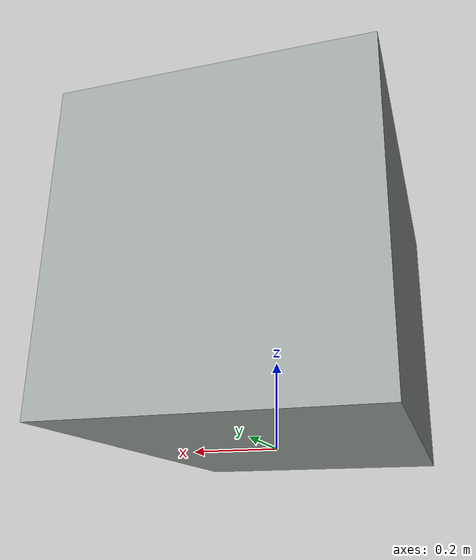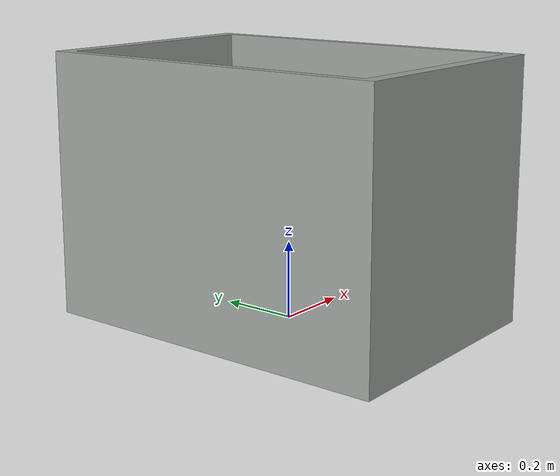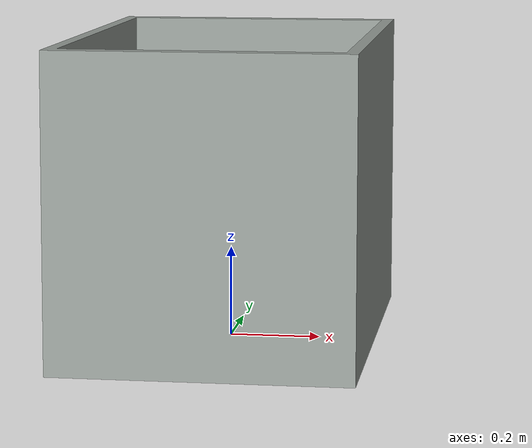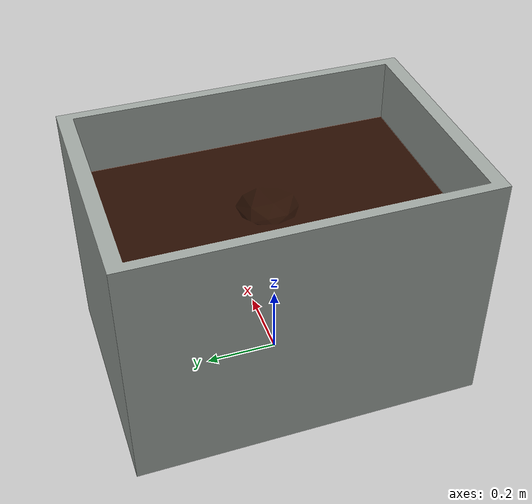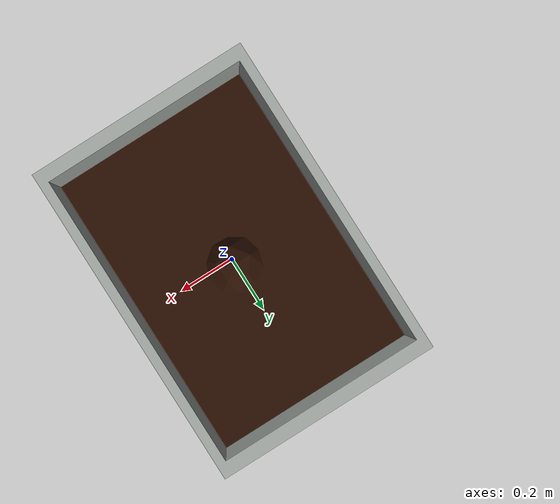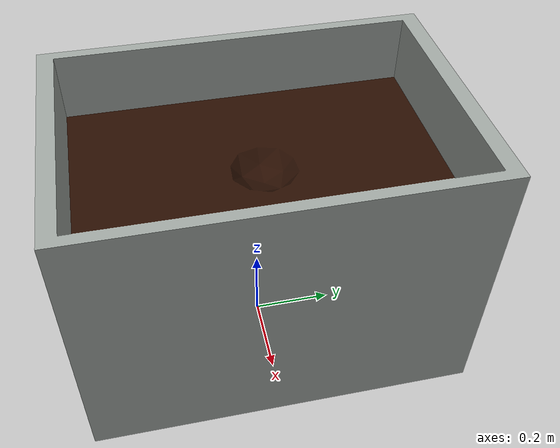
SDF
<?xml version="1.0"?>
<sdf version="1.5">
  <model name="soil_bed">
    <link name="link">
    <collision name="collision">
        <geometry>
          <mesh>
            <uri>model://soil_bed/meshes/soil_bed.dae</uri>
          </mesh>
        </geometry>
      </collision>
      <visual name="visual">
        <cast_shadows>false</cast_shadows>
        <geometry>
          <mesh>
            <uri>model://soil_bed/meshes/soil_bed.dae</uri>
          </mesh>
        </geometry>
      </visual>
    </link>
  </model>
</sdf>
